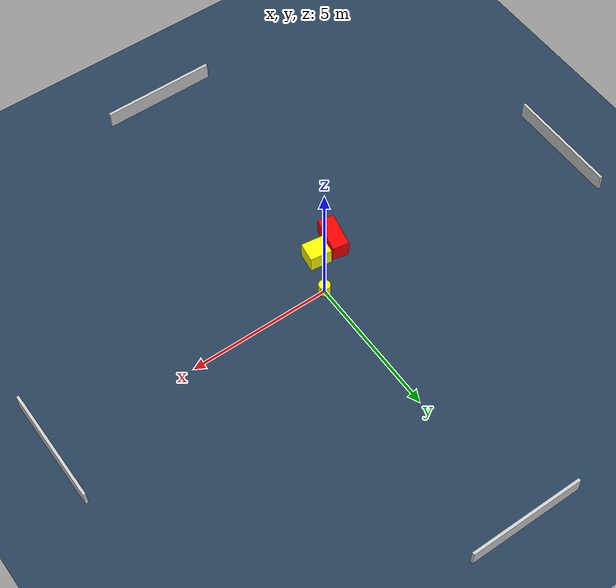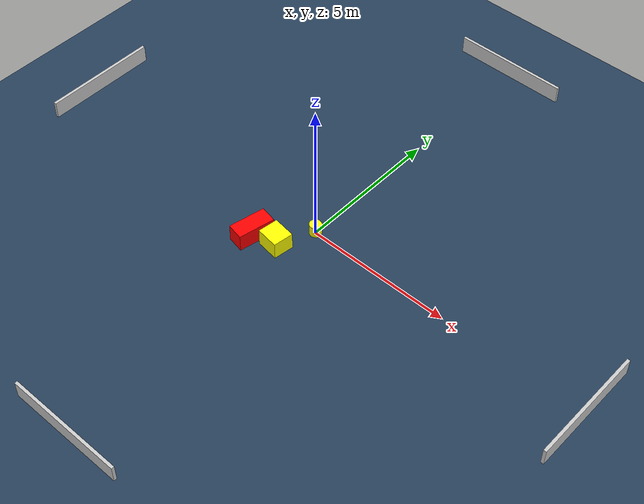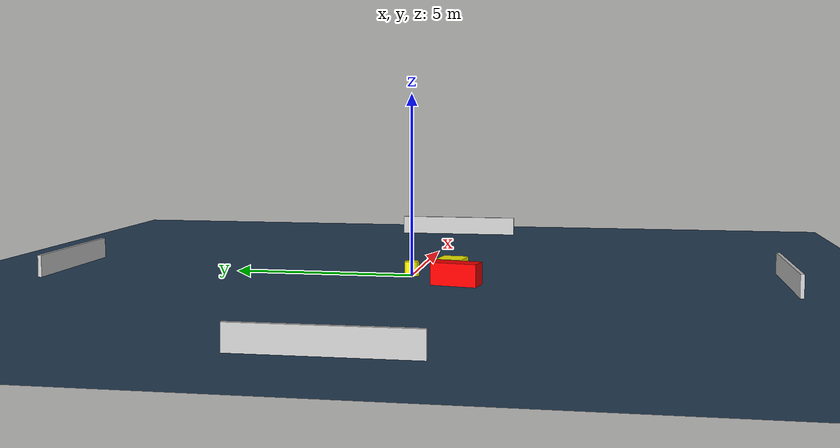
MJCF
<?xml version="1.0" ?>
<mujoco model="generated_environment">
  <option timestep="0.01" integrator="RK4" cone="elliptic"/>
  <default>
    <geom density="1"/>
  </default>
  <asset>
    <texture builtin="gradient" height="3072" name="skybox" rgb1="0.3 0.5 0.7" rgb2="0 0 0" type="skybox" width="512"/>
    <texture builtin="checker" height="300" name="groundplane" rgb1="0.2 0.3 0.4" rgb2="0.1 0.2 0.3" type="2d" width="300"/>
    <material name="groundplane" reflectance="0.2" texrepeat="5 5" texture="groundplane"/>
  </asset>
  <worldbody>
    <light dir="0 0 -1" directional="true" pos="0 0 1.5"/>
    <geom condim="3" friction="0.5 0.005 0.001" material="groundplane" name="floor" pos="0 0 0" size="0 0 0.05" type="plane"/>
    <body name="walls">
      <geom name="wall_1" condim="4" pos="-10.0 0.0 0.3" rgba="0.800000011920929 0.800000011920929 0.800000011920929 1.0" size="0.05 2.0 0.3" type="box"/>
      <geom name="wall_2" condim="4" pos="10.0 0.0 0.3" rgba="0.800000011920929 0.800000011920929 0.800000011920929 1.0" size="0.05 2.0 0.3" type="box"/>
      <geom name="wall_3" condim="4" pos="0.0 -10.0 0.3" rgba="0.800000011920929 0.800000011920929 0.800000011920929 1.0" size="2.0 0.05 0.3" type="box"/>
      <geom name="wall_4" condim="4" pos="0.0 10.0 0.3" rgba="0.800000011920929 0.800000011920929 0.800000011920929 1.0" size="2.0 0.05 0.3" type="box"/>
    </body>
    <body name="robot">
      <joint name="joint_x" type="slide" pos="0 0 0" axis="1 0 0"/>
      <joint name="joint_y" type="slide" pos="0 0 0" axis="0 1 0"/>
      <geom name="robot" type="cylinder" pos="0.0 0.0 0.2" size="0.2 0.2 0.0" mass="5.0" friction="1.0 0.005 0.0001" condim="4" rgba="1.0 1.0 0.0 1.0"/>
    </body>
    <body name="obstacle_1_movable">
      <geom name="obstacle_1_movable" condim="4" pos="-0.5448076577591164 -1.2066039349525803 0.3" euler="0 0 262.01470391578613" friction="0.0 0.005 0.001" rgba="1.0 1.0 0.0 1.0" size="0.34365789045269063 0.3830807528851856 0.3" type="box" mass="0.1"/>
      <joint type="free"/>
    </body>
    <body name="obstacle_2_static">
      <geom name="obstacle_2_static" condim="4" pos="-1.3590172155930682 -1.410215224553191 0.3" euler="0 0 258.2177305526283" friction="0.0 0.005 0.001" rgba="1.0 0.0 0.0 1.0" size="0.6263474611435609 0.28678937985041053 0.3" type="box"/>
    </body>
  </worldbody>
  <actuator>
    <motor name="actuator_x" joint="joint_x" gear="1" ctrlrange="-1 1"/>
    <motor name="actuator_y" joint="joint_y" gear="1" ctrlrange="-1 1"/>
  </actuator>
</mujoco>
